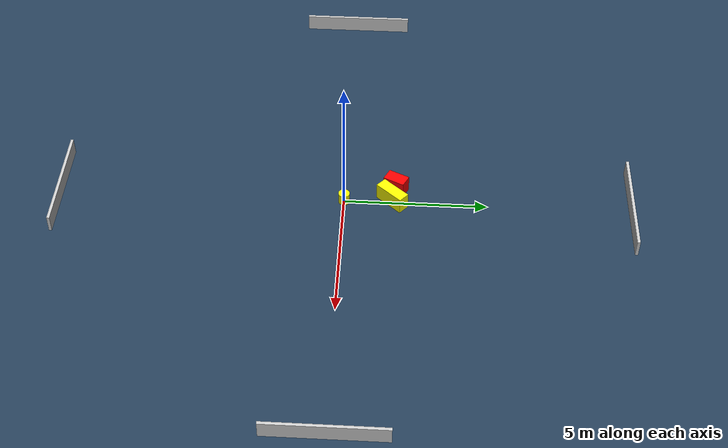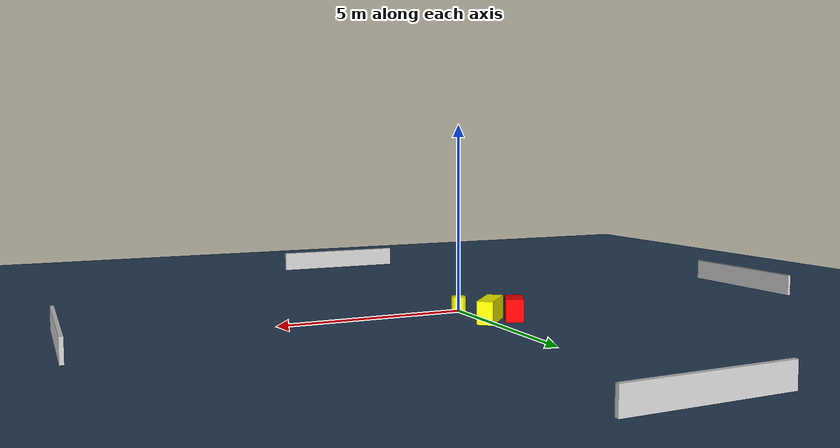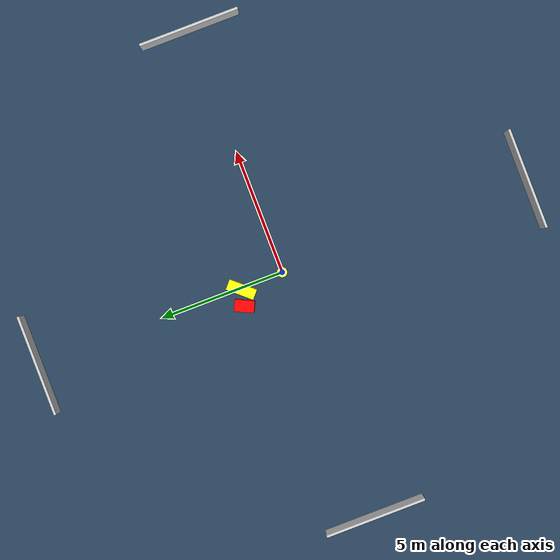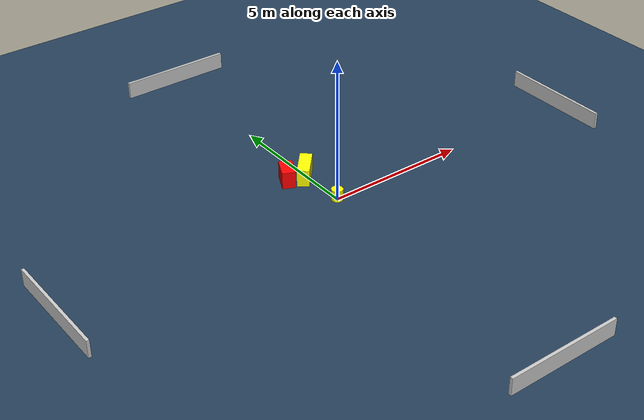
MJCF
<?xml version="1.0" ?>
<mujoco model="generated_environment">
  <option timestep="0.01" integrator="RK4" cone="elliptic"/>
  <default>
    <geom density="1"/>
  </default>
  <asset>
    <texture builtin="gradient" height="3072" name="skybox" rgb1="0.3 0.5 0.7" rgb2="0 0 0" type="skybox" width="512"/>
    <texture builtin="checker" height="300" name="groundplane" rgb1="0.2 0.3 0.4" rgb2="0.1 0.2 0.3" type="2d" width="300"/>
    <material name="groundplane" reflectance="0.2" texrepeat="5 5" texture="groundplane"/>
  </asset>
  <worldbody>
    <light dir="0 0 -1" directional="true" pos="0 0 1.5"/>
    <geom condim="3" friction="0.5 0.005 0.001" material="groundplane" name="floor" pos="0 0 0" size="0 0 0.05" type="plane"/>
    <body name="walls">
      <geom name="wall_1" condim="4" pos="-10.0 0.0 0.3" rgba="0.800000011920929 0.800000011920929 0.800000011920929 1.0" size="0.05 2.0 0.3" type="box"/>
      <geom name="wall_2" condim="4" pos="10.0 0.0 0.3" rgba="0.800000011920929 0.800000011920929 0.800000011920929 1.0" size="0.05 2.0 0.3" type="box"/>
      <geom name="wall_3" condim="4" pos="0.0 -10.0 0.3" rgba="0.800000011920929 0.800000011920929 0.800000011920929 1.0" size="2.0 0.05 0.3" type="box"/>
      <geom name="wall_4" condim="4" pos="0.0 10.0 0.3" rgba="0.800000011920929 0.800000011920929 0.800000011920929 1.0" size="2.0 0.05 0.3" type="box"/>
    </body>
    <body name="robot">
      <joint name="joint_x" type="slide" pos="0 0 0" axis="1 0 0"/>
      <joint name="joint_y" type="slide" pos="0 0 0" axis="0 1 0"/>
      <geom name="robot" type="cylinder" pos="0.0 0.0 0.2" size="0.2 0.2 0.0" mass="5.0" friction="1.0 0.005 0.0001" condim="4" rgba="1.0 1.0 0.0 1.0"/>
    </body>
    <body name="obstacle_1_movable">
      <geom name="obstacle_1_movable" condim="4" pos="-0.06651353258269174 1.6850481528716492 0.3" euler="0 0 138.3780945078145" friction="0.0 0.005 0.001" rgba="1.0 1.0 0.0 1.0" size="0.2097870866135394 0.557273176270664 0.3" type="box" mass="0.1"/>
      <joint type="free"/>
    </body>
    <body name="obstacle_2_static">
      <geom name="obstacle_2_static" condim="4" pos="-0.6935553410532197 1.8056197561617795 0.3" euler="0 0 334.06884207244394" friction="0.0 0.005 0.001" rgba="1.0 0.0 0.0 1.0" size="0.23011988689868038 0.38334279099254787 0.3" type="box"/>
    </body>
  </worldbody>
  <actuator>
    <motor name="actuator_x" joint="joint_x" gear="1" ctrlrange="-1 1"/>
    <motor name="actuator_y" joint="joint_y" gear="1" ctrlrange="-1 1"/>
  </actuator>
</mujoco>
